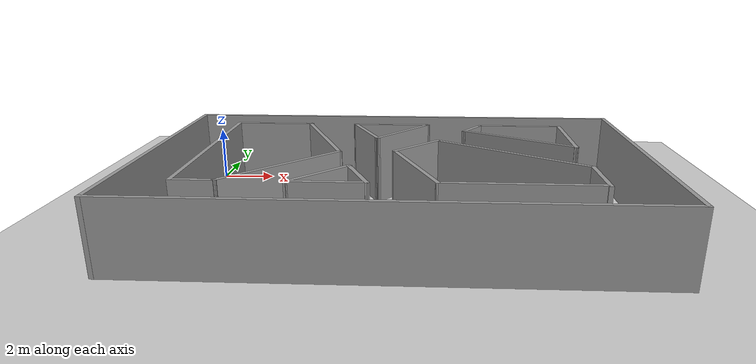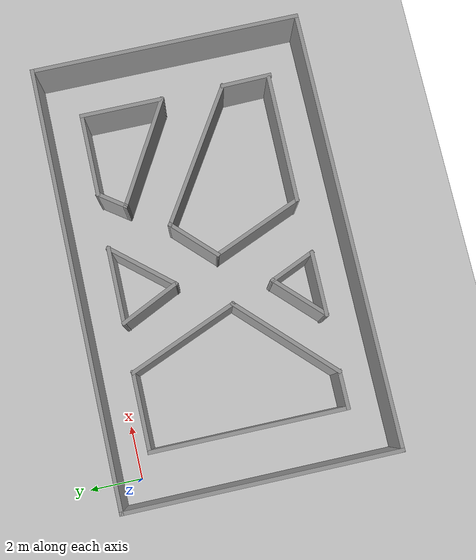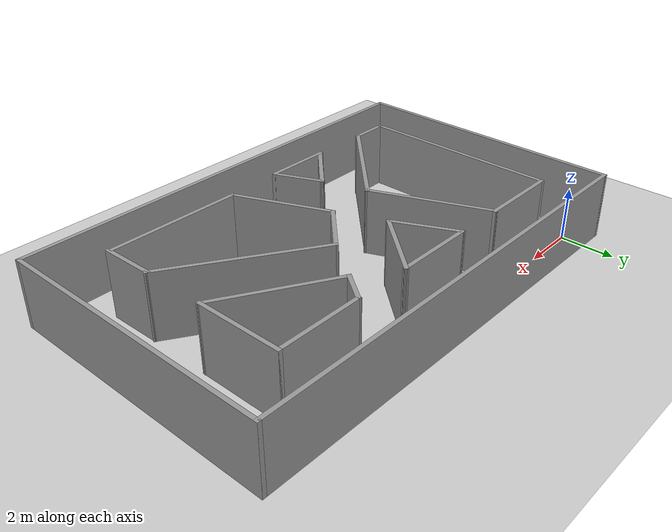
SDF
<sdf version="1.6">
 <world name="default">
  <light name="sun" type="directional">
   <pose>0 0 10 0 -0 0</pose>
   <diffuse>0.8 0.8 0.8 1</diffuse>
   <specular>0.2 0.2 0.2 1</specular>
   <attenuation>
    <range>1000</range>
    <constant>0.9</constant>
    <linear>0.01</linear>
    <quadratic>0.001</quadratic>
   </attenuation>
   <direction>-0.5 0.1 -0.9</direction>
  </light>
  <model name="ground_plane">
   <static>1</static>
   <link name="link">
    <collision name="collision">
     <geometry><plane><normal>0 0 1</normal><size>100 100</size></plane></geometry>
     <surface>
      <contact><collide_bitmask>65535</collide_bitmask></contact>
      <friction><ode><mu>100</mu><mu2>50</mu2></ode></friction>
     </surface>
    </collision>
    <visual name="visual">
     <cast_shadows>0</cast_shadows>
     <geometry><plane><normal>0 0 1</normal><size>100 100</size></plane></geometry>
     <material>
      <script><uri>file://media/materials/scripts/gazebo.material</uri><name>Gazebo/Grey</name></script>
     </material>
    </visual>
   </link>
  </model>
  <gravity>0 0 -9.8</gravity>
  <magnetic_field>6e-06 2.3e-05 -4.2e-05</magnetic_field>
  <atmosphere type="adiabatic"/>
  <physics name="default_physics" default="0" type="ode">
   <max_step_size>0.001</max_step_size>
   <real_time_factor>1</real_time_factor>
   <real_time_update_rate>1000</real_time_update_rate>
  </physics>
  <scene><ambient>0.4 0.4 0.4 1</ambient><background>0.7 0.7 0.7 1</background><shadows>1</shadows></scene>
  <spherical_coordinates>
   <surface_model>EARTH_WGS84</surface_model>
   <latitude_deg>0</latitude_deg>
   <longitude_deg>0</longitude_deg>
   <elevation>0</elevation>
   <heading_deg>0</heading_deg>
  </spherical_coordinates>
  <model name="Gtrace">
   <pose>7.49172 -4.39331 0 0 -0 0</pose>
   <link name="Wall_0">
    <collision name="Wall_0_Collision">
     <geometry><box><size>17 0.15 2.5</size></box></geometry>
     <pose>0 0 1.25 0 -0 0</pose>
    </collision>
    <visual name="Wall_0_Visual">
     <pose>0 0 1.25 0 -0 0</pose>
     <geometry><box><size>17 0.15 2.5</size></box></geometry>
     <material>
      <script><uri>file://media/materials/scripts/gazebo.material</uri><name>Gazebo/Grey</name></script>
      <ambient>1 1 1 1</ambient>
     </material>
     <meta><layer>0</layer></meta>
    </visual>
    <pose>0 5.175 0 0 -0 0</pose>
   </link>
   <link name="Wall_100">
    <collision name="Wall_100_Collision">
     <geometry><box><size>3.25 0.15 2.5</size></box></geometry>
     <pose>0 0 1.25 0 -0 0</pose>
    </collision>
    <visual name="Wall_100_Visual">
     <pose>0 0 1.25 0 -0 0</pose>
     <geometry><box><size>3.25 0.15 2.5</size></box></geometry>
     <material>
      <script><uri>file://media/materials/scripts/gazebo.material</uri><name>Gazebo/Grey</name></script>
      <ambient>1 1 1 1</ambient>
     </material>
     <meta><layer>0</layer></meta>
    </visual>
    <pose>6.28612 2.12555 0 0 0 -1.5708</pose>
   </link>
   <link name="Wall_101">
    <collision name="Wall_101_Collision">
     <geometry><box><size>4.5 0.15 2.5</size></box></geometry>
     <pose>0 0 1.25 0 -0 0</pose>
    </collision>
    <visual name="Wall_101_Visual">
     <pose>0 0 1.25 0 -0 0</pose>
     <geometry><box><size>4.5 0.15 2.5</size></box></geometry>
     <material>
      <script><uri>file://media/materials/scripts/gazebo.material</uri><name>Gazebo/Grey</name></script>
      <ambient>1 1 1 1</ambient>
     </material>
     <meta><layer>0</layer></meta>
    </visual>
    <pose>4.40251 1.66305 0 0 -0 2.61799</pose>
   </link>
   <link name="Wall_102">
    <collision name="Wall_102_Collision">
     <geometry><box><size>1.29052 0.15 2.5</size></box></geometry>
     <pose>0 0 1.25 0 -0 0</pose>
    </collision>
    <visual name="Wall_102_Visual">
     <pose>0 0 1.25 0 -0 0</pose>
     <geometry><box><size>1.29052 0.15 2.5</size></box></geometry>
     <material>
      <script><uri>file://media/materials/scripts/gazebo.material</uri><name>Gazebo/Grey</name></script>
      <ambient>1 1 1 1</ambient>
     </material>
     <meta><layer>0</layer></meta>
    </visual>
    <pose>2.85251 3.21305 0 0 -0 0.945912</pose>
   </link>
   <link name="Wall_111">
    <collision name="Wall_111_Collision">
     <geometry><box><size>2.5 0.15 2.5</size></box></geometry>
     <pose>0 0 1.25 0 -0 0</pose>
    </collision>
    <visual name="Wall_111_Visual">
     <pose>0 0 1.25 0 -0 0</pose>
     <geometry><box><size>2.5 0.15 2.5</size></box></geometry>
     <material>
      <script><uri>file://media/materials/scripts/gazebo.material</uri><name>Gazebo/Grey</name></script>
      <ambient>1 1 1 1</ambient>
     </material>
     <meta><layer>0</layer></meta>
    </visual>
    <pose>-1.88858 -3.63372 0 0 -0 0</pose>
   </link>
   <link name="Wall_113">
    <collision name="Wall_113_Collision">
     <geometry><box><size>2.46729 0.15 2.5</size></box></geometry>
     <pose>0 0 1.25 0 -0 0</pose>
    </collision>
    <visual name="Wall_113_Visual">
     <pose>0 0 1.25 0 -0 0</pose>
     <geometry><box><size>2.46729 0.15 2.5</size></box></geometry>
     <material>
      <script><uri>file://media/materials/scripts/gazebo.material</uri><name>Gazebo/Grey</name></script>
      <ambient>1 1 1 1</ambient>
     </material>
     <meta><layer>0</layer></meta>
    </visual>
    <pose>-2.22117 -2.81444 0 0 -0 0.785398</pose>
   </link>
   <link name="Wall_114">
    <collision name="Wall_114_Collision">
     <geometry><box><size>1.93635 0.15 2.5</size></box></geometry>
     <pose>0 0 1.25 0 -0 0</pose>
    </collision>
    <visual name="Wall_114_Visual">
     <pose>0 0 1.25 0 -0 0</pose>
     <geometry><box><size>1.93635 0.15 2.5</size></box></geometry>
     <material>
      <script><uri>file://media/materials/scripts/gazebo.material</uri><name>Gazebo/Grey</name></script>
      <ambient>1 1 1 1</ambient>
     </material>
     <meta><layer>0</layer></meta>
    </visual>
    <pose>-1.04617 -2.81444 0 0 0 -1.16118</pose>
   </link>
   <link name="Wall_149">
    <collision name="Wall_149_Collision">
     <geometry><box><size>2.53552 0.15 2.5</size></box></geometry>
     <pose>0 0 1.25 0 -0 0</pose>
    </collision>
    <visual name="Wall_149_Visual">
     <pose>0 0 1.25 0 -0 0</pose>
     <geometry><box><size>2.53552 0.15 2.5</size></box></geometry>
     <material>
      <script><uri>file://media/materials/scripts/gazebo.material</uri><name>Gazebo/Grey</name></script>
      <ambient>1 1 1 1</ambient>
     </material>
     <meta><layer>0</layer></meta>
    </visual>
    <pose>-1.26088 2.62695 0 0 0 -1.1301</pose>
   </link>
   <link name="Wall_154">
    <collision name="Wall_154_Collision">
     <geometry><box><size>5.88513 0.15 2.5</size></box></geometry>
     <pose>0 0 1.25 0 -0 0</pose>
    </collision>
    <visual name="Wall_154_Visual">
     <pose>0 0 1.25 0 -0 0</pose>
     <geometry><box><size>5.88513 0.15 2.5</size></box></geometry>
     <material>
      <script><uri>file://media/materials/scripts/gazebo.material</uri><name>Gazebo/Grey</name></script>
      <ambient>1 1 1 1</ambient>
     </material>
     <meta><layer>0</layer></meta>
    </visual>
    <pose>3.88807 -0.265386 0 0 0 -0.565016</pose>
   </link>
   <link name="Wall_156">
    <collision name="Wall_156_Collision">
     <geometry><box><size>3 0.15 2.5</size></box></geometry>
     <pose>0 0 1.25 0 -0 0</pose>
    </collision>
    <visual name="Wall_156_Visual">
     <pose>0 0 1.25 0 -0 0</pose>
     <geometry><box><size>3 0.15 2.5</size></box></geometry>
     <material>
      <script><uri>file://media/materials/scripts/gazebo.material</uri><name>Gazebo/Grey</name></script>
      <ambient>1 1 1 1</ambient>
     </material>
     <meta><layer>0</layer></meta>
    </visual>
    <pose>-0.344678 3.70574 0 0 -0 0</pose>
   </link>
   <link name="Wall_158">
    <collision name="Wall_158_Collision">
     <geometry><box><size>2.98071 0.15 2.5</size></box></geometry>
     <pose>0 0 1.25 0 -0 0</pose>
    </collision>
    <visual name="Wall_158_Visual">
     <pose>0 0 1.25 0 -0 0</pose>
     <geometry><box><size>2.98071 0.15 2.5</size></box></geometry>
     <material>
      <script><uri>file://media/materials/scripts/gazebo.material</uri><name>Gazebo/Grey</name></script>
      <ambient>1 1 1 1</ambient>
     </material>
     <meta><layer>0</layer></meta>
    </visual>
    <pose>0.164117 2.62695 0 0 0 -2.27488</pose>
   </link>
   <link name="Wall_160">
    <collision name="Wall_160_Collision">
     <geometry><box><size>4.57961 0.15 2.5</size></box></geometry>
     <pose>0 0 1.25 0 -0 0</pose>
    </collision>
    <visual name="Wall_160_Visual">
     <pose>0 0 1.25 0 -0 0</pose>
     <geometry><box><size>4.57961 0.15 2.5</size></box></geometry>
     <material>
      <script><uri>file://media/materials/scripts/gazebo.material</uri><name>Gazebo/Grey</name></script>
      <ambient>1 1 1 1</ambient>
     </material>
     <meta><layer>0</layer></meta>
    </visual>
    <pose>-2.77258 1.69629 0 0 0 -1.18099</pose>
   </link>
   <link name="Wall_178">
    <collision name="Wall_178_Collision">
     <geometry><box><size>2.25 0.15 2.5</size></box></geometry>
     <pose>0 0 1.25 0 -0 0</pose>
    </collision>
    <visual name="Wall_178_Visual">
     <pose>0 0 1.25 0 -0 0</pose>
     <geometry><box><size>2.25 0.15 2.5</size></box></geometry>
     <material>
      <script><uri>file://media/materials/scripts/gazebo.material</uri><name>Gazebo/Grey</name></script>
      <ambient>1 1 1 1</ambient>
     </material>
     <meta><layer>0</layer></meta>
    </visual>
    <pose>0.723718 0.527528 0 0 0 -2.35619</pose>
   </link>
   <link name="Wall_180">
    <collision name="Wall_180_Collision">
     <geometry><box><size>3.76783 0.15 2.5</size></box></geometry>
     <pose>0 0 1.25 0 -0 0</pose>
    </collision>
    <visual name="Wall_180_Visual">
     <pose>0 0 1.25 0 -0 0</pose>
     <geometry><box><size>3.76783 0.15 2.5</size></box></geometry>
     <material>
      <script><uri>file://media/materials/scripts/gazebo.material</uri><name>Gazebo/Grey</name></script>
      <ambient>1 1 1 1</ambient>
     </material>
     <meta><layer>0</layer></meta>
    </visual>
    <pose>0.679375 -1.88371 0 0 0 -1.17458</pose>
   </link>
   <link name="Wall_4">
    <collision name="Wall_4_Collision">
     <geometry><box><size>10.5 0.15 2.5</size></box></geometry>
     <pose>0 0 1.25 0 -0 0</pose>
    </collision>
    <visual name="Wall_4_Visual">
     <pose>0 0 1.25 0 -0 0</pose>
     <geometry><box><size>10.5 0.15 2.5</size></box></geometry>
     <material>
      <script><uri>file://media/materials/scripts/gazebo.material</uri><name>Gazebo/Grey</name></script>
      <ambient>1 1 1 1</ambient>
     </material>
     <meta><layer>0</layer></meta>
    </visual>
    <pose>8.425 0 0 0 0 -1.5708</pose>
   </link>
   <link name="Wall_6">
    <collision name="Wall_6_Collision">
     <geometry><box><size>17 0.15 2.5</size></box></geometry>
     <pose>0 0 1.25 0 -0 0</pose>
    </collision>
    <visual name="Wall_6_Visual">
     <pose>0 0 1.25 0 -0 0</pose>
     <geometry><box><size>17 0.15 2.5</size></box></geometry>
     <material>
      <script><uri>file://media/materials/scripts/gazebo.material</uri><name>Gazebo/Grey</name></script>
      <ambient>1 1 1 1</ambient>
     </material>
     <meta><layer>0</layer></meta>
    </visual>
    <pose>0 -5.175 0 0 -0 3.14159</pose>
   </link>
   <link name="Wall_62">
    <collision name="Wall_62_Collision">
     <geometry><box><size>7.5 0.15 2.5</size></box></geometry>
     <pose>0 0 1.25 0 -0 0</pose>
    </collision>
    <visual name="Wall_62_Visual">
     <pose>0 0 1.25 0 -0 0</pose>
     <geometry><box><size>7.5 0.15 2.5</size></box></geometry>
     <material>
      <script><uri>file://media/materials/scripts/gazebo.material</uri><name>Gazebo/Grey</name></script>
      <ambient>1 1 1 1</ambient>
     </material>
     <meta><layer>0</layer></meta>
    </visual>
    <pose>-6.53362 0.069943 0 0 0 -1.5708</pose>
   </link>
   <link name="Wall_64">
    <collision name="Wall_64_Collision">
     <geometry><box><size>1.5 0.15 2.5</size></box></geometry>
     <pose>0 0 1.25 0 -0 0</pose>
    </collision>
    <visual name="Wall_64_Visual">
     <pose>0 0 1.25 0 -0 0</pose>
     <geometry><box><size>1.5 0.15 2.5</size></box></geometry>
     <material>
      <script><uri>file://media/materials/scripts/gazebo.material</uri><name>Gazebo/Grey</name></script>
      <ambient>1 1 1 1</ambient>
     </material>
     <meta><layer>0</layer></meta>
    </visual>
    <pose>-5.85862 -3.60506 0 0 -0 0</pose>
   </link>
   <link name="Wall_7">
    <collision name="Wall_7_Collision">
     <geometry><box><size>10.5 0.15 2.5</size></box></geometry>
     <pose>0 0 1.25 0 -0 0</pose>
    </collision>
    <visual name="Wall_7_Visual">
     <pose>0 0 1.25 0 -0 0</pose>
     <geometry><box><size>10.5 0.15 2.5</size></box></geometry>
     <material>
      <script><uri>file://media/materials/scripts/gazebo.material</uri><name>Gazebo/Grey</name></script>
      <ambient>1 1 1 1</ambient>
     </material>
     <meta><layer>0</layer></meta>
    </visual>
    <pose>-8.425 0 0 0 -0 1.5708</pose>
   </link>
   <link name="Wall_73">
    <collision name="Wall_73_Collision">
     <geometry><box><size>5 0.15 2.5</size></box></geometry>
     <pose>0 0 1.25 0 -0 0</pose>
    </collision>
    <visual name="Wall_73_Visual">
     <pose>0 0 1.25 0 -0 0</pose>
     <geometry><box><size>5 0.15 2.5</size></box></geometry>
     <material>
      <script><uri>file://media/materials/scripts/gazebo.material</uri><name>Gazebo/Grey</name></script>
      <ambient>1 1 1 1</ambient>
     </material>
     <meta><layer>0</layer></meta>
    </visual>
    <pose>3.80249 -3.56997 0 0 0 -0.007212</pose>
   </link>
   <link name="Wall_77">
    <collision name="Wall_77_Collision">
     <geometry><box><size>1.98259 0.15 2.5</size></box></geometry>
     <pose>0 0 1.25 0 -0 0</pose>
    </collision>
    <visual name="Wall_77_Visual">
     <pose>0 0 1.25 0 -0 0</pose>
     <geometry><box><size>1.98259 0.15 2.5</size></box></geometry>
     <material>
      <script><uri>file://media/materials/scripts/gazebo.material</uri><name>Gazebo/Grey</name></script>
      <ambient>1 1 1 1</ambient>
     </material>
     <meta><layer>0</layer></meta>
    </visual>
    <pose>6.30995 -2.71702 0 0 0 -1.55171</pose>
   </link>
   <link name="Wall_79">
    <collision name="Wall_79_Collision">
     <geometry><box><size>3.09252 0.15 2.5</size></box></geometry>
     <pose>0 0 1.25 0 -0 0</pose>
    </collision>
    <visual name="Wall_79_Visual">
     <pose>0 0 1.25 0 -0 0</pose>
     <geometry><box><size>3.09252 0.15 2.5</size></box></geometry>
     <material>
      <script><uri>file://media/materials/scripts/gazebo.material</uri><name>Gazebo/Grey</name></script>
      <ambient>1 1 1 1</ambient>
     </material>
     <meta><layer>0</layer></meta>
    </visual>
    <pose>-5.06236 3.74494 0 0 -0 0</pose>
   </link>
   <link name="Wall_88">
    <collision name="Wall_88_Collision">
     <geometry><box><size>4.75 0.15 2.5</size></box></geometry>
     <pose>0 0 1.25 0 -0 0</pose>
    </collision>
    <visual name="Wall_88_Visual">
     <pose>0 0 1.25 0 -0 0</pose>
     <geometry><box><size>4.75 0.15 2.5</size></box></geometry>
     <material>
      <script><uri>file://media/materials/scripts/gazebo.material</uri><name>Gazebo/Grey</name></script>
      <ambient>1 1 1 1</ambient>
     </material>
     <meta><layer>0</layer></meta>
    </visual>
    <pose>-3.55728 -1.97871 0 0 -0 0.785398</pose>
   </link>
   <link name="Wall_99">
    <collision name="Wall_99_Collision">
     <geometry><box><size>3.25 0.15 2.5</size></box></geometry>
     <pose>0 0 1.25 0 -0 0</pose>
    </collision>
    <visual name="Wall_99_Visual">
     <pose>0 0 1.25 0 -0 0</pose>
     <geometry><box><size>3.25 0.15 2.5</size></box></geometry>
     <material>
      <script><uri>file://media/materials/scripts/gazebo.material</uri><name>Gazebo/Grey</name></script>
      <ambient>1 1 1 1</ambient>
     </material>
     <meta><layer>0</layer></meta>
    </visual>
    <pose>4.73612 3.67555 0 0 -0 0</pose>
   </link>
   <static>1</static>
  </model>
 </world>
</sdf>
